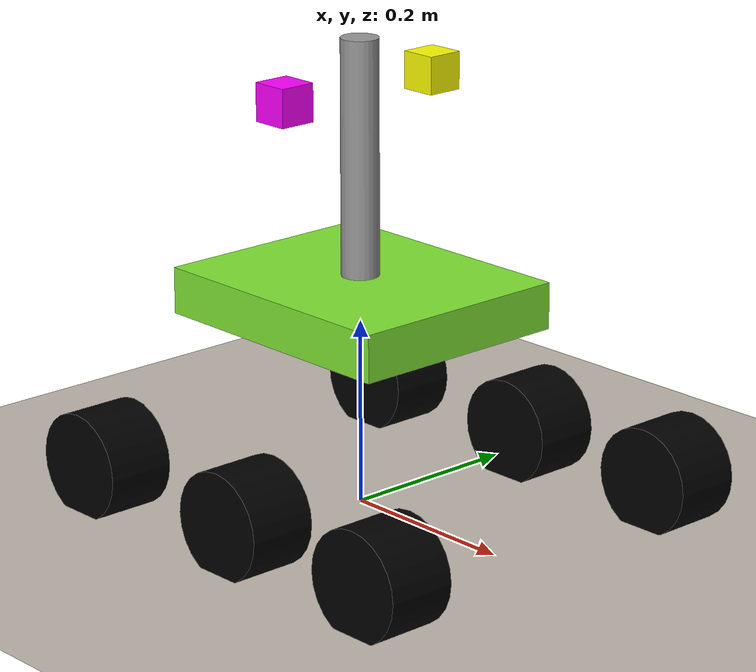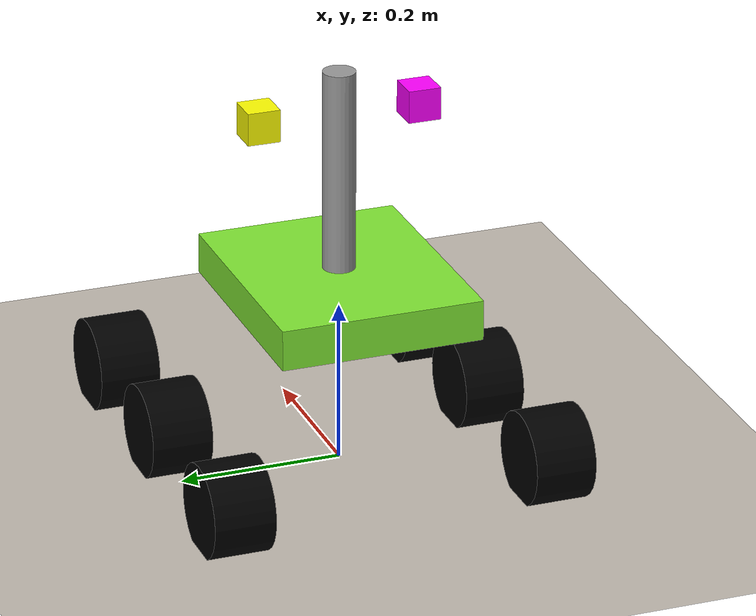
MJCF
<mujoco model="rover">
  <option iterations="60" timestep="0.001" solver="PGS" gravity="0 0 -1.62" />
  <compiler angle="radian" meshdir="meshes" eulerseq="zyx" autolimits="true" />

  <default>
    <joint limited="true" damping="0.05" armature="0.02" frictionloss="0.01"/>
    <geom condim="4" contype="1" conaffinity="15" friction="0.9 0.2 0.2" solref="0.1 1" />
    <motor ctrllimited="true" />
    <equality solref="0.002 1" />
    <default class="visualgeom">
      <geom material="visualgeom" condim="1" contype="0" conaffinity="0" />
    </default>
  </default>

  <worldbody>
    <light directional="true" diffuse="0.4 0.4 0.4" specular="0.1 0.1 0.1" pos="0 0 5.0" dir="0 0 -1" castshadow="false" />
    <light directional="true" diffuse="0.6 0.6 0.6" specular="0.2 0.2 0.2" pos="0 0 4" dir="0 0 -1" />

    <geom name="ground" type="plane" pos="0 0 0" size="100 100 0.001"
          quat="1 0 0 0" material="matplane" condim="3" conaffinity="15"
          friction="1.3 0.2 0.02"/>

    <camera name="fixed" pos="0 -3.0 0.7" xyaxes="1 0 0 0 0 1" />
    <camera name="track" mode="trackcom" pos="0 -3.0 0.7" xyaxes="1 0 0 0 0 1" />

    <body name="root" pos="0 0 0.25" quat="1 0 0 0">
      <freejoint name="root" />
      <inertial pos="0 0 -0.05" mass="8.0" diaginertia="0.15 0.15 0.15" />
      <site name="imu" size="0.01" pos="0 0 0" />
      <geom size="0.15 0.125 0.025" pos="0 0 -0.025" type="box" contype="1" conaffinity="0" density="500" group="1" class="visualgeom" />

      <!-- LEFT WHEELS - FIXED: axis changed to 0 0 1, added collision geom -->
      <body name="left_bogie_front_wheel" pos="0.25 0.2 -0.2" quat="0.707107 0.707107 0 0">
        <inertial pos="0 0 0" quat="0.5 0.5 -0.5 0.5" mass="0.3" diaginertia="0.000880625 0.000584063 0.000584063" />
        <joint name="left_bogie_front_axle" pos="0 0 0" axis="0 0 1" limited="false" damping="0.1"/>
        <geom size="0.0575 0.0375" type="cylinder" rgba="0 0 0 1"
              contype="1" conaffinity="0" density="800" group="1" class="visualgeom" />
        <geom type="cylinder" size="0.05 0.02" rgba="0 0 0 1" friction="2.0 0.1 0.1" condim="6"/>
      </body>

      <body name="left_bogie_rear_wheel" pos="0.05 0.2 -0.2" quat="0.707107 0.707107 0 0">
        <inertial pos="0 0 0" quat="0.5 0.5 -0.5 0.5" mass="0.3" diaginertia="0.000880625 0.000584063 0.000584063" />
        <joint name="left_bogie_rear_axle" pos="0 0 0" axis="0 0 1" limited="false" damping="0.1"/>
        <geom size="0.0575 0.0375" type="cylinder" rgba="0 0 0 1"
              contype="1" conaffinity="0" density="800" group="1" class="visualgeom" />
        <geom type="cylinder" size="0.05 0.02" rgba="0 0 0 1" friction="2.0 0.1 0.1" condim="6"/>
      </body>

      <body name="left_rocker_rear_wheel" pos="-0.175 0.2 -0.2" quat="0.707107 0.707107 0 0">
        <inertial pos="0 0 0" quat="0.5 0.5 -0.5 0.5" mass="0.3" diaginertia="0.000880625 0.000584063 0.000584063" />
        <joint name="left_rocker_rear_axle" pos="0 0 0" axis="0 0 1" limited="false" damping="0.1"/>
        <geom size="0.0575 0.0375" type="cylinder" rgba="0 0 0 1"
              contype="1" conaffinity="0" density="800" group="1" class="visualgeom" />
        <geom type="cylinder" size="0.05 0.02" rgba="0 0 0 1" friction="2.0 0.1 0.1" condim="6"/>
      </body>

      <!-- RIGHT WHEELS - FIXED: axis changed to 0 0 1, added collision geom -->
      <body name="right_bogie_front_wheel" pos="0.25 -0.2 -0.2" quat="0.707107 0.707107 0 0">
        <inertial pos="0 0 0" quat="0.5 0.5 -0.5 0.5" mass="0.3" diaginertia="0.000880625 0.000584063 0.000584063" />
        <joint name="right_bogie_front_axle" pos="0 0 0" axis="0 0 1" limited="false" damping="0.1"/>
        <geom size="0.0575 0.0375" type="cylinder" rgba="0 0 0 1"
              contype="1" conaffinity="0" density="800" group="1" class="visualgeom" />
        <geom type="cylinder" size="0.05 0.02" rgba="0 0 0 1" friction="2.0 0.1 0.1" condim="6"/>
      </body>

      <body name="right_bogie_rear_wheel" pos="0.05 -0.2 -0.2" quat="0.707107 0.707107 0 0">
        <inertial pos="0 0 0" quat="0.5 0.5 -0.5 0.5" mass="0.3" diaginertia="0.000880625 0.000584063 0.000584063" />
        <joint name="right_bogie_rear_axle" pos="0 0 0" axis="0 0 1" limited="false" damping="0.1"/>
        <geom size="0.0575 0.0375" type="cylinder" rgba="0 0 0 1"
              contype="1" conaffinity="0" density="800" group="1" class="visualgeom" />
        <geom type="cylinder" size="0.05 0.02" rgba="0 0 0 1" friction="2.0 0.1 0.1" condim="6"/>
      </body>

      <body name="right_rocker_rear_wheel" pos="-0.175 -0.2 -0.2" quat="0.707107 0.707107 0 0">
        <inertial pos="0 0 0" quat="0.5 0.5 -0.5 0.5" mass="0.3" diaginertia="0.000880625 0.000584063 0.000584063" />
        <joint name="right_rocker_rear_axle" pos="0 0 0" axis="0 0 1" limited="false" damping="0.1"/>
        <geom size="0.0575 0.0375" type="cylinder" rgba="0 0 0 1"
              contype="1" conaffinity="0" density="800" group="1" class="visualgeom" />
        <geom type="cylinder" size="0.05 0.02" rgba="0 0 0 1" friction="2.0 0.1 0.1" condim="6"/>
      </body>

      <!-- Camera mast - FIXED: cameras now look forward (along +X axis) -->
      <body name="camera_mast" pos="0 0 0.10">
        <geom name="mast_geom" type="cylinder" size="0.02 0.15" rgba="0.6 0.6 0.6 1" />
        <body name="sensor_mount" pos="0 0 0.10">
          <camera name="camera_left" pos="0 0.10 0" xyaxes="0 1 0 0 0 1" fovy="30"/>
          <geom name="camera_left_geom" type="box" size="0.02 0.02 0.02" pos="0 0.10 0" rgba="1 1 0 1"/>
          <camera name="camera_right" pos="0 -0.10 0" xyaxes="0 1 0 0 0 1" fovy="30"/>
          <geom name="camera_right_geom" type="box" size="0.02 0.02 0.02" pos="0 -0.10 0" rgba="1 0 1 1"/>
        </body>
      </body>
    </body>
  </worldbody>

  <asset>
    <texture name="terrain_tex" type="2d" file="terrain.png" />
    <material name="matplane" reflectance="0.5" texture="terrain_tex" texrepeat="1 1" />
    <material name="visualgeom" rgba="0.5 0.9 0.2 1" />
  </asset>

  <actuator>
    <motor name="left_bogie_front_axle"  joint="left_bogie_front_axle"  ctrllimited="true" ctrlrange="-3.0 3.0" gear="25" />
    <motor name="left_bogie_rear_axle"   joint="left_bogie_rear_axle"   ctrllimited="true" ctrlrange="-3.0 3.0" gear="25" />
    <motor name="left_rocker_rear_axle"  joint="left_rocker_rear_axle"  ctrllimited="true" ctrlrange="-3.0 3.0" gear="25" />
    <motor name="right_bogie_front_axle" joint="right_bogie_front_axle" ctrllimited="true" ctrlrange="-3.0 3.0" gear="25" />
    <motor name="right_bogie_rear_axle"  joint="right_bogie_rear_axle"  ctrllimited="true" ctrlrange="-3.0 3.0" gear="25" />
    <motor name="right_rocker_rear_axle" joint="right_rocker_rear_axle" ctrllimited="true" ctrlrange="-3.0 3.0" gear="25" />
  </actuator>

  <sensor>
    <actuatorpos name="left_bogie_front_axle_p" actuator="left_bogie_front_axle" />
    <actuatorvel name="left_bogie_front_axle_v" actuator="left_bogie_front_axle" />
    <actuatorfrc name="left_bogie_front_axle_f" actuator="left_bogie_front_axle" noise="0.001" />
    <actuatorpos name="left_bogie_rear_axle_p" actuator="left_bogie_rear_axle" />
    <actuatorvel name="left_bogie_rear_axle_v" actuator="left_bogie_rear_axle" />
    <actuatorfrc name="left_bogie_rear_axle_f" actuator="left_bogie_rear_axle" noise="0.001" />
    <actuatorpos name="left_rocker_rear_axle_p" actuator="left_rocker_rear_axle" />
    <actuatorvel name="left_rocker_rear_axle_v" actuator="left_rocker_rear_axle" />
    <actuatorfrc name="left_rocker_rear_axle_f" actuator="left_rocker_rear_axle" noise="0.001" />
    <actuatorpos name="right_bogie_front_axle_p" actuator="right_bogie_front_axle" />
    <actuatorvel name="right_bogie_front_axle_v" actuator="right_bogie_front_axle" />
    <actuatorfrc name="right_bogie_front_axle_f" actuator="right_bogie_front_axle" noise="0.001" />
    <actuatorpos name="right_bogie_rear_axle_p" actuator="right_bogie_rear_axle" />
    <actuatorvel name="right_bogie_rear_axle_v" actuator="right_bogie_rear_axle" />
    <actuatorfrc name="right_bogie_rear_axle_f" actuator="right_bogie_rear_axle" noise="0.001" />
    <actuatorpos name="right_rocker_rear_axle_p" actuator="right_rocker_rear_axle" />
    <actuatorvel name="right_rocker_rear_axle_v" actuator="right_rocker_rear_axle" />
    <actuatorfrc name="right_rocker_rear_axle_f" actuator="right_rocker_rear_axle" noise="0.001" />
    <framequat name="orientation" objtype="site" noise="0.001" objname="imu" />
    <gyro name="angular-velocity" site="imu" noise="0.005" cutoff="34.9" />
  </sensor>
</mujoco>
